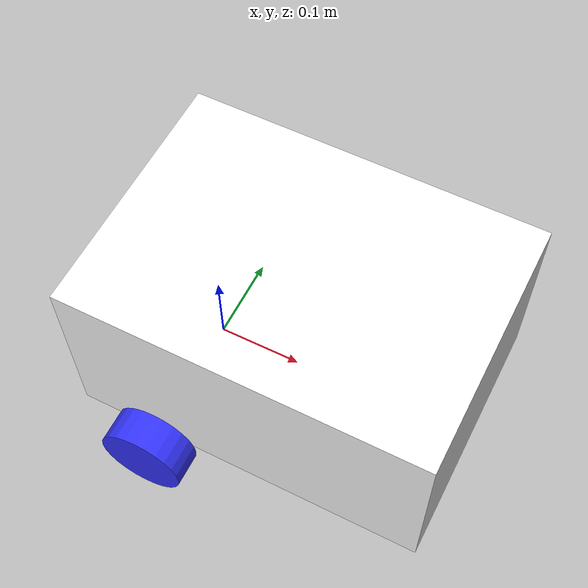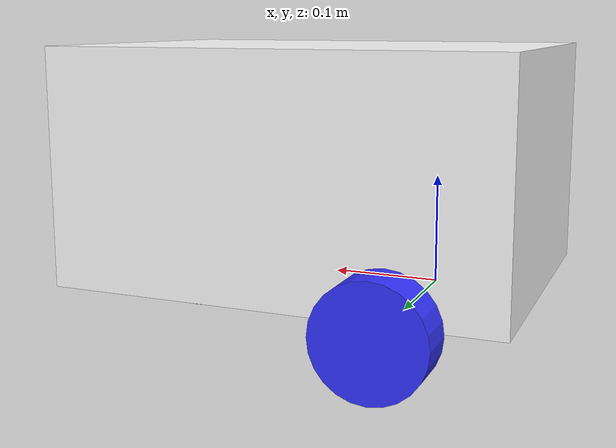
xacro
<?xml version="1.0"?>
<robot xmlns:xacro="http://www.ros.org/wiki/xacro"  >

    <xacro:include filename="inertial_macros.xacro" />

    <material name="white">
        <color rgba="1 1 1 1" />
    </material>

    <material name="orange">
        <color rgba="1 0.3 0.1 1" />
    </material>

    <material name="blue">
        <color rgba="0.2 0.2 1 1" />
    </material>

    <material name="black">
        <color rgba="0 0 0 1" />
    </material>

    <!-- BASE LINK-->

    <link name="base_link">

    </link>

    <!-- CHASSIS LINK-->

    <joint name="chassis_joint" type="fixed">
        <parent link="base_link" />
        <child link="chassis" />
        <origin xyz="-0.1 0 0" />
    </joint>

    <link name="chassis">
        <visual>
            <origin xyz="0.21 0 0.11" />
            <geometry>
                <box size="0.42 0.3 0.22" />
            </geometry>
            <material name="white" />
        </visual>
        <collision>
            <origin xyz="0.21 0 0.11" />
            <geometry>
                <box size="0.42 0.30 0.22" />
            </geometry>
        </collision>
        <xacro:inertial_box mass="0.5" x="0.42" y="0.3" z="0.22">
            <origin xyz="0.21 0 0.11" />
        </xacro:inertial_box>
    </link>

    <!-- LEFT WHEEL LINK-->

    <joint name="left_wheel_joint" type="continuous">
        <parent link="base_link" />
        <child link="left_wheel" />
        <origin xyz="0 0.175 0" rpy="-${pi/2} 0 0" />
        <axis xyz="0 0 1" />
    </joint>

    <link name="left_wheel">
        <visual>
            <geometry>
                <cylinder radius="0.05" length="0.04" />
            </geometry>
            <material name="blue" />
        </visual>
        <collision>
            <geometry>
                <cylinder radius="0.05" length="0.04" />
            </geometry>
        </collision>
        <xacro:inertial_cylinder mass="0.1" length="0.04" radius="0.05" >
            <origin xyz="0 0 0" rpy="0 0 0" />
        </xacro:inertial_cylinder>
    </link>

        <!-- RIGHT WHEEL LINK-->

    <joint name="right_wheel_joint" type="continuous">
        <parent link="base_link" />
        <child link="right_wheel" />
        <origin xyz="0 -0.175 0" rpy="${pi/2} 0 0" />
        <axis xyz="0 0 -1" />
    </joint>

    <link name="right_wheel">
        <visual>
            <geometry>
                <cylinder radius="0.05" length="0.04" />
            </geometry>
            <material name="blue" />
        </visual>
        <collision>
            <geometry>
                <cylinder radius="0.05" length="0.04" />
            </geometry>
        </collision>
        <xacro:inertial_cylinder mass="0.1" length="0.04" radius="0.05" >
            <origin xyz="0 0 0" rpy="0 0 0" />
        </xacro:inertial_cylinder>
    </link>

    <!-- CASTER WHEEL LINK-->

    <joint name="caster_wheel_joint" type="fixed">
        <parent link="chassis" />
        <child link="caster_wheel" />
        <origin xyz="0.35 0 0" />
    </joint>

    <link name="caster_wheel">
        <visual>
            <geometry>
                <sphere radius="0.05" />
            </geometry>
            <material name="black" />
        </visual>
        <collision>
            <geometry>
                <sphere radius="0.05" />
            </geometry>
        </collision>
        <xacro:inertial_sphere mass="0.1" radius="0.05">
            <origin xyz="0 0 0" rpy="0 0 0" />
        </xacro:inertial_sphere>
    </link>

</robot>
